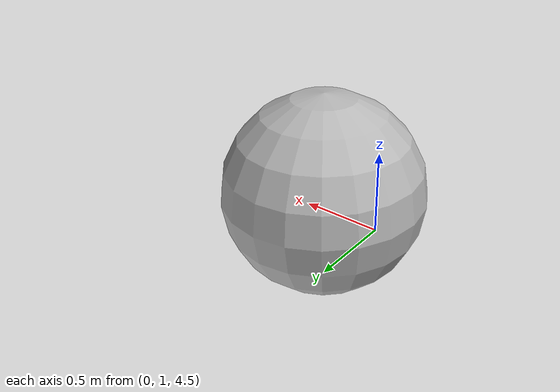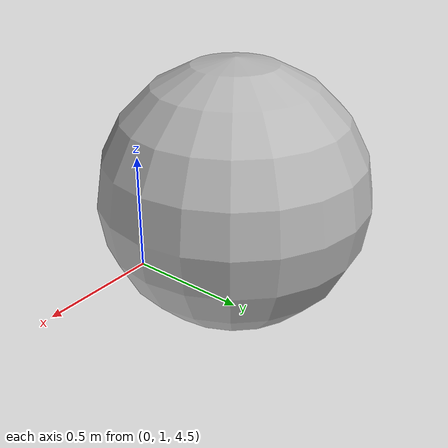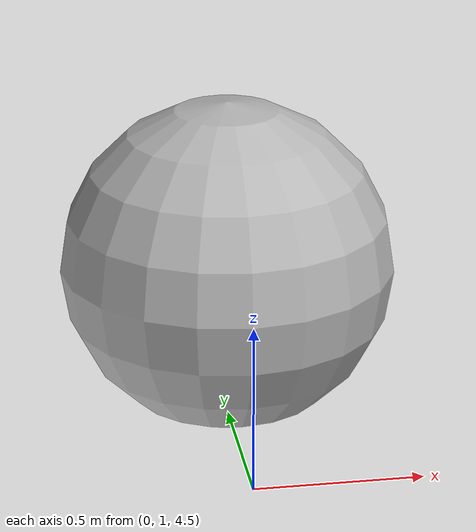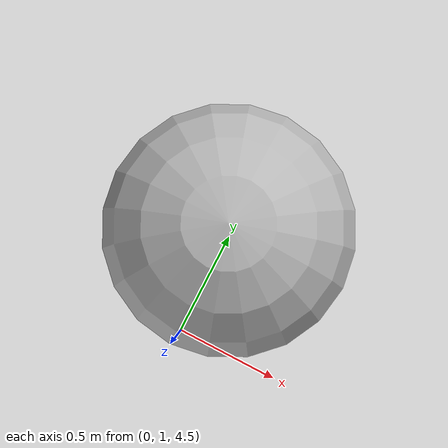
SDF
<?xml version="1.0" ?>
<sdf version="1.6">
  <world name="default">
    <gui fullscreen='0'>
      <plugin name='keyboard' filename='libKeyboardGUIPlugin.so'/>
    </gui>
    <include>
      <uri>model://sun</uri>
    </include>
    <include>
      <uri>model://ground_plane</uri>
    </include>
    <model name="sphere">
      <pose>0 1.5 5.0 0 0 0</pose>
      <link name="link">
        <collision name="collision">
          <geometry>
            <sphere>
              <radius>0.5</radius>
            </sphere>
          </geometry>
        </collision>
        <visual name="visual">
          <geometry>
            <sphere>
              <radius>0.5</radius>
            </sphere>
          </geometry>
        </visual>
      </link>
      <plugin name='reset' filename='libKeyToResetModel.so'>
        <key>116</key>
      </plugin>
    </model>
  </world>
</sdf>
